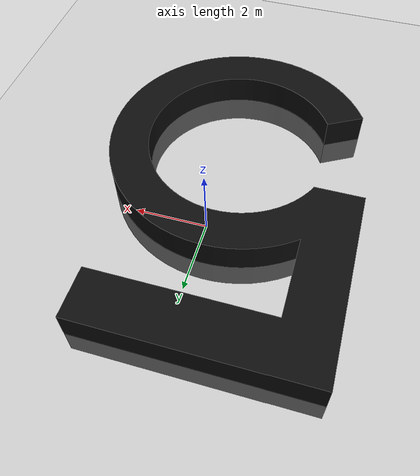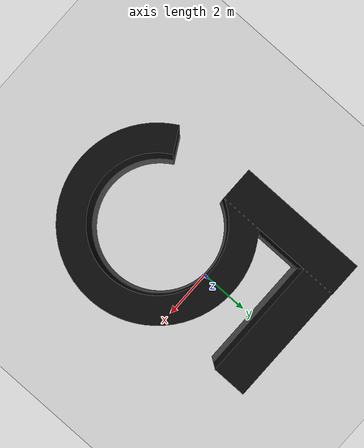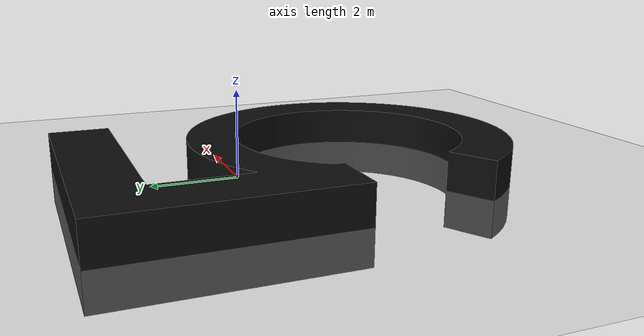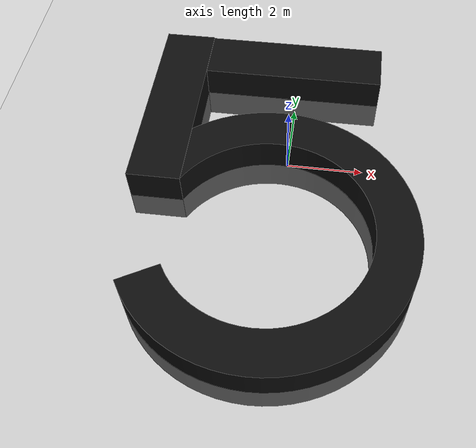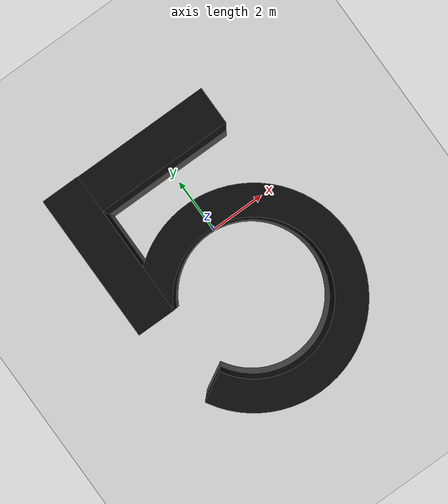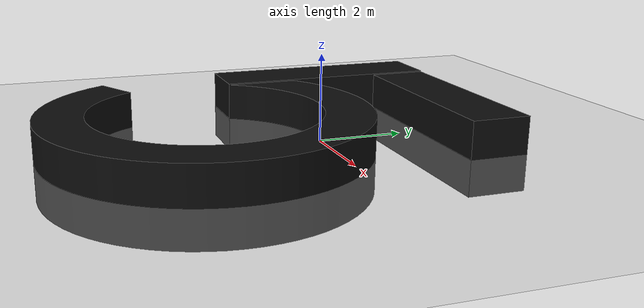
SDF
<sdf version='1.10'>
  <world name='five_world'>
    <physics type='ode'>
      <max_step_size>0.001</max_step_size>
      <real_time_factor>1</real_time_factor>
    </physics>
    <scene>
      <ambient>0.400000006 0.400000006 0.400000006 1</ambient>
      <background>0.699999988 0.699999988 0.699999988 1</background>
      <shadows>true</shadows>
    </scene>

    <model name='ground_plane'>
      <static>true</static>
      <link name='link'>
        <collision name='collision'>
          <geometry><plane><normal>0 0 1</normal><size>100 100</size></plane></geometry>
          <surface><friction><ode/></friction><bounce/><contact/></surface>
        </collision>
        <visual name='visual'>
          <geometry><plane><normal>0 0 1</normal><size>100 100</size></plane></geometry>
          <material>
            <ambient>0.800000012 0.800000012 0.800000012 1</ambient>
            <diffuse>0.800000012 0.800000012 0.800000012 1</diffuse>
          </material>
        </visual>
        <pose>0 0 0 0 0 0</pose>
      </link>
    </model>

    <model name="five_maze">
      <pose>0 0 0 0 0 0</pose>
      <static>true</static>
      <link name="link">
        <collision name="collision">
          <geometry>
            <mesh>
              <uri>model://five_maze/meshes/five_maze.stl</uri>
            </mesh>
          </geometry>
        </collision>
        <visual name="visual">
          <geometry>
            <mesh>
              <uri>model://five_maze/meshes/five_maze.stl</uri>
            </mesh>
          </geometry>
          <material>
            <ambient>0.05 0.05 0.05 1</ambient> <diffuse>0.05 0.05 0.05 1</diffuse>
          </material>
        </visual>
      </link>
    </model>

    <light name='sun' type='directional'>
      <pose>0 0 10 0 0 0</pose>
      <cast_shadows>true</cast_shadows>
      <intensity>1</intensity>
      <direction>-0.5 0.10000000000000001 -0.90000000000000002</direction>
      <diffuse>0.800000012 0.800000012 0.800000012 1</diffuse>
      <specular>0.200000003 0.200000003 0.200000003 1</specular>
      <attenuation><range>10</range><linear>1</linear><constant>1</constant><quadratic>0</quadratic></attenuation>
    </light>
  </world>
</sdf>
